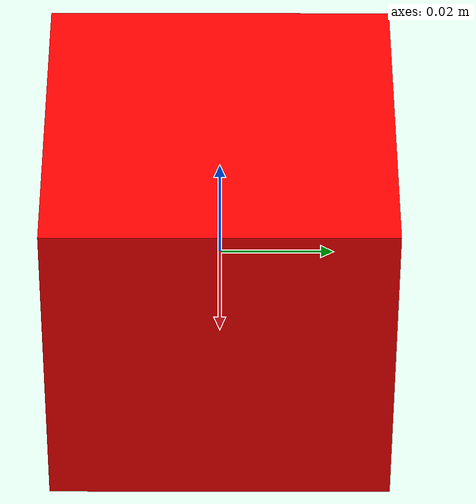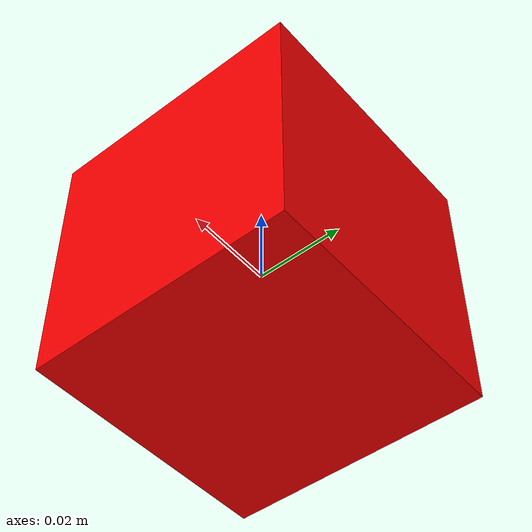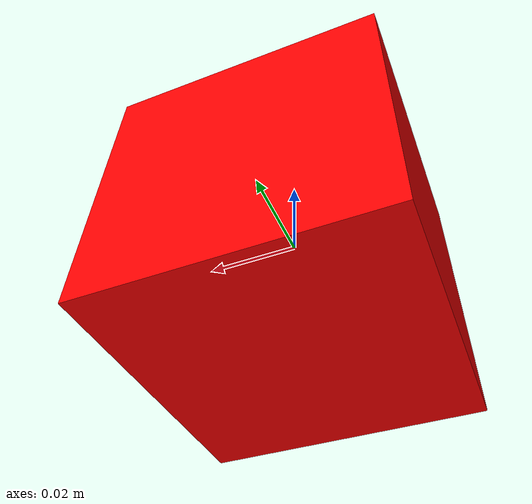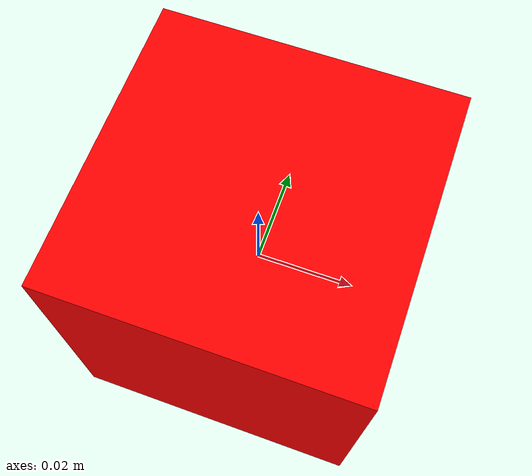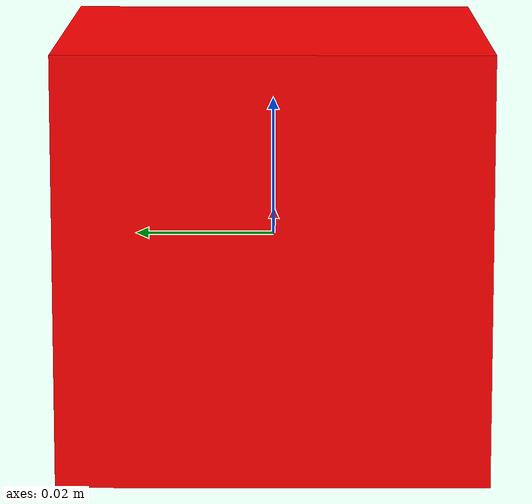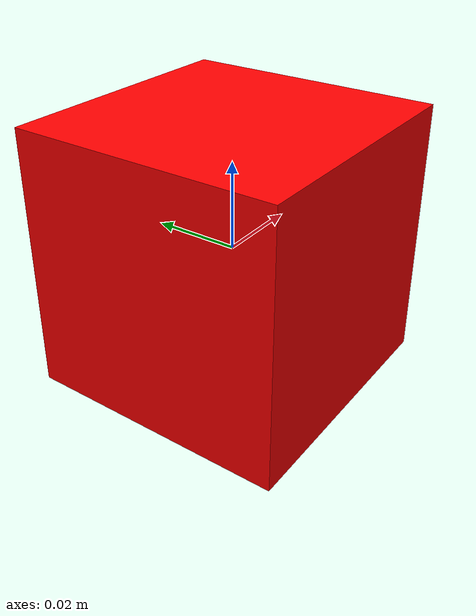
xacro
<?xml version="1.0" encoding="utf-8"?>
<robot name="cube" xmlns:xacro="http://www.ros.org/wiki/xacro">

  <xacro:arg name="mass" default="0.1" />
  <xacro:arg name="size" default="0.06" />
  <xacro:arg name="red" default="1" />
  <xacro:arg name="green" default="0.0" />
  <xacro:arg name="blue" default="0.0" />
  <xacro:arg name="alpha" default="1.0" />
  <xacro:arg name="gazebo" default="false" />
  <xacro:arg name="add_floating_joint" default="true" />
  <xacro:arg name="add_fixed_joint" default="false" />
  <xacro:arg name="fixed_joint_xyz" default="0 0 0" />
  <xacro:arg name="fixed_joint_rpy" default="0 0 0" />
  <xacro:arg name="has_collision" default="true" />
  <xacro:property name="mass" value="$(arg mass)" />
  <xacro:property name="size" value="$(arg size)" />
  <xacro:property name="red" value="$(arg red)" />
  <xacro:property name="green" value="$(arg green)" />
  <xacro:property name="blue" value="$(arg blue)" />
  <xacro:property name="alpha" value="$(arg alpha)" />
  <xacro:property name="gazebo" value="$(arg gazebo)" />
  <xacro:property name="add_floating_joint" value="$(arg add_floating_joint)" />
  <xacro:property name="add_fixed_joint" value="$(arg add_fixed_joint)" />
  <xacro:property name="fixed_joint_xyz" value="$(arg fixed_joint_xyz)" />
  <xacro:property name="fixed_joint_rpy" value="$(arg fixed_joint_rpy)" />
  <xacro:property name="has_collision" value="$(arg has_collision)" />
	<material name="color">
		<color rgba="${red} ${green} ${blue} ${alpha}"/>
	</material>

    <xacro:macro name="box_inertial" params="mass x y z pose_xyz pose_rpy">
        <inertial>
            <origin xyz="${pose_xyz}" rpy="${pose_rpy}"/>
            <mass value="${mass}" />
            <inertia ixx="${mass * (y*y + z*z) / 12}" ixy="0.0" ixz="0.0" iyy="${mass * (x*x + z*z) / 12}" iyz="0.0" izz="${mass * (x*x + y*y) / 12}"/>
        </inertial>
    </xacro:macro>

    <link name="cube">
		<visual>
			<origin xyz="0 0 0" rpy="0 0 0"/>
			<geometry>
				<box size="${size} ${size} ${size}"/>
			</geometry>
			<material name="color"/>
	    </visual>
        <xacro:if value="${has_collision}">
            <collision>
                <origin xyz="0 0 0" rpy="0 0 0"/>
                <geometry>
                    <box size="${size} ${size} ${size}"/>
                </geometry>
            </collision>
        </xacro:if>
        <xacro:box_inertial mass="${mass}" x="${size}" y="${size}" z="${size}" pose_xyz="0 0 0" pose_rpy="0 0 0"/>
        <contact> <!-- for pybullet -->
            <lateral_friction value="1"/>
            <rolling_friction value="0.00001"/>
        </contact>
    </link>

    <xacro:if value="${add_floating_joint}">
        <link name="world"/>
        <joint name="floating_joint" type="floating">
            <parent link="world" />
            <child link="cube" />
        </joint>
    </xacro:if>

    <xacro:if value="${add_fixed_joint}">
        <link name="world"/>
        <joint name="fixed_joint" type="fixed">
            <parent link="world" />
            <child link="cube" />
            <origin xyz="${fixed_joint_xyz}" rpy="${fixed_joint_rpy}"/>
        </joint>
    </xacro:if>

    <xacro:if value="${gazebo}">
        <gazebo reference="cube"> <!-- reference to a existing "link" -->
            <visual>
            <material>
                <ambient>${red} ${green} ${blue} ${alpha}</ambient>
                <diffuse>${red} ${green} ${blue} ${alpha}</diffuse>
                <specular>${red} ${green} ${blue} ${alpha}</specular>
                <emissive>0 0 0 1</emissive>
            </material>
            </visual>
        </gazebo>
    </xacro:if>
</robot>
